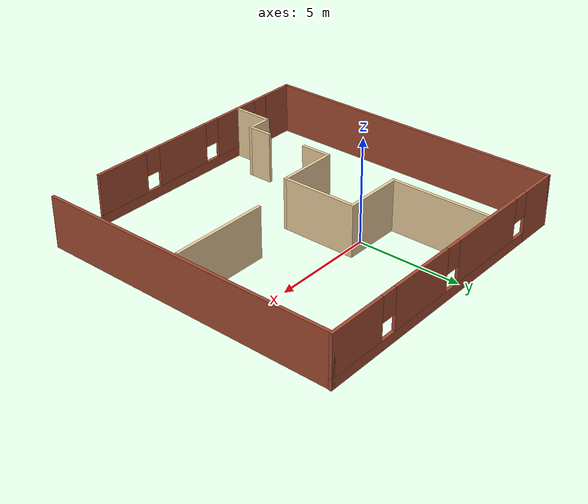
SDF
<?xml version='1.0'?>
<sdf version='1.7'>
  <model name='gMaze5'>
    <pose>1.11307 -2.1707 0 0 -0 0</pose>
    <link name='Wall_0'>
      <pose>0 7.425 0 0 -0 0</pose>
      <visual name='Wall_0_Visual_0'>
        <pose>-6.50945 0 1.25 0 -0 0</pose>
        <geometry>
          <box>
            <size>1.98109 0.15 2.5</size>
          </box>
        </geometry>
        <material>
          <script>
            <uri>file://media/materials/scripts/gazebo.material</uri>
            <name>Gazebo/Bricks</name>
          </script>
          <ambient>1 1 1 1</ambient>
        </material>
        <meta>
          <layer>0</layer>
        </meta>
      </visual>
      <collision name='Wall_0_Collision_0'>
        <geometry>
          <box>
            <size>1.98109 0.15 2.5</size>
          </box>
        </geometry>
        <pose>-6.50945 0 1.25 0 -0 0</pose>
      </collision>
      <visual name='Wall_0_Visual_1'>
        <pose>0.990545 0 0.25 0 -0 0</pose>
        <geometry>
          <box>
            <size>13.0189 0.15 0.5</size>
          </box>
        </geometry>
        <material>
          <script>
            <uri>file://media/materials/scripts/gazebo.material</uri>
            <name>Gazebo/Bricks</name>
          </script>
          <ambient>1 1 1 1</ambient>
        </material>
        <meta>
          <layer>0</layer>
        </meta>
      </visual>
      <collision name='Wall_0_Collision_1'>
        <geometry>
          <box>
            <size>13.0189 0.15 0.5</size>
          </box>
        </geometry>
        <pose>0.990545 0 0.25 0 -0 0</pose>
      </collision>
      <visual name='Wall_0_Visual_2'>
        <pose>-2.60363 0 1.5 0 -0 0</pose>
        <geometry>
          <box>
            <size>4.23056 0.15 2</size>
          </box>
        </geometry>
        <material>
          <script>
            <uri>file://media/materials/scripts/gazebo.material</uri>
            <name>Gazebo/Bricks</name>
          </script>
          <ambient>1 1 1 1</ambient>
        </material>
        <meta>
          <layer>0</layer>
        </meta>
      </visual>
      <collision name='Wall_0_Collision_2'>
        <geometry>
          <box>
            <size>4.23056 0.15 2</size>
          </box>
        </geometry>
        <pose>-2.60363 0 1.5 0 -0 0</pose>
      </collision>
      <visual name='Wall_0_Visual_3'>
        <pose>2.02238 0 1.5 0 -0 0</pose>
        <geometry>
          <box>
            <size>3.42145 0.15 2</size>
          </box>
        </geometry>
        <material>
          <script>
            <uri>file://media/materials/scripts/gazebo.material</uri>
            <name>Gazebo/Bricks</name>
          </script>
          <ambient>1 1 1 1</ambient>
        </material>
        <meta>
          <layer>0</layer>
        </meta>
      </visual>
      <collision name='Wall_0_Collision_3'>
        <geometry>
          <box>
            <size>3.42145 0.15 2</size>
          </box>
        </geometry>
        <pose>2.02238 0 1.5 0 -0 0</pose>
      </collision>
      <visual name='Wall_0_Visual_4'>
        <pose>6.01655 0 1.5 0 -0 0</pose>
        <geometry>
          <box>
            <size>2.9669 0.15 2</size>
          </box>
        </geometry>
        <material>
          <script>
            <uri>file://media/materials/scripts/gazebo.material</uri>
            <name>Gazebo/Bricks</name>
          </script>
          <ambient>1 1 1 1</ambient>
        </material>
        <meta>
          <layer>0</layer>
        </meta>
      </visual>
      <collision name='Wall_0_Collision_4'>
        <geometry>
          <box>
            <size>2.9669 0.15 2</size>
          </box>
        </geometry>
        <pose>6.01655 0 1.5 0 -0 0</pose>
      </collision>
      <visual name='Wall_0_Visual_5'>
        <pose>-5.11891 0 1.9 0 -0 0</pose>
        <geometry>
          <box>
            <size>0.8 0.15 1.2</size>
          </box>
        </geometry>
        <material>
          <script>
            <uri>file://media/materials/scripts/gazebo.material</uri>
            <name>Gazebo/Bricks</name>
          </script>
          <ambient>1 1 1 1</ambient>
        </material>
        <meta>
          <layer>0</layer>
        </meta>
      </visual>
      <collision name='Wall_0_Collision_5'>
        <geometry>
          <box>
            <size>0.8 0.15 1.2</size>
          </box>
        </geometry>
        <pose>-5.11891 0 1.9 0 -0 0</pose>
      </collision>
      <visual name='Wall_0_Visual_6'>
        <pose>-0.088347 0 1.9 0 -0 0</pose>
        <geometry>
          <box>
            <size>0.8 0.15 1.2</size>
          </box>
        </geometry>
        <material>
          <script>
            <uri>file://media/materials/scripts/gazebo.material</uri>
            <name>Gazebo/Bricks</name>
          </script>
          <ambient>1 1 1 1</ambient>
        </material>
        <meta>
          <layer>0</layer>
        </meta>
      </visual>
      <collision name='Wall_0_Collision_6'>
        <geometry>
          <box>
            <size>0.8 0.15 1.2</size>
          </box>
        </geometry>
        <pose>-0.088347 0 1.9 0 -0 0</pose>
      </collision>
      <visual name='Wall_0_Visual_7'>
        <pose>4.1331 0 1.9 0 -0 0</pose>
        <geometry>
          <box>
            <size>0.8 0.15 1.2</size>
          </box>
        </geometry>
        <material>
          <script>
            <uri>file://media/materials/scripts/gazebo.material</uri>
            <name>Gazebo/Bricks</name>
          </script>
          <ambient>1 1 1 1</ambient>
        </material>
        <meta>
          <layer>0</layer>
        </meta>
      </visual>
      <collision name='Wall_0_Collision_7'>
        <geometry>
          <box>
            <size>0.8 0.15 1.2</size>
          </box>
        </geometry>
        <pose>4.1331 0 1.9 0 -0 0</pose>
      </collision>
    </link>
    <link name='Wall_1'>
      <collision name='Wall_1_Collision'>
        <geometry>
          <box>
            <size>15 0.15 2.5</size>
          </box>
        </geometry>
        <pose>0 0 1.25 0 -0 0</pose>
      </collision>
      <visual name='Wall_1_Visual'>
        <pose>0 0 1.25 0 -0 0</pose>
        <geometry>
          <box>
            <size>15 0.15 2.5</size>
          </box>
        </geometry>
        <material>
          <script>
            <uri>file://media/materials/scripts/gazebo.material</uri>
            <name>Gazebo/Bricks</name>
          </script>
          <ambient>1 1 1 1</ambient>
        </material>
        <meta>
          <layer>0</layer>
        </meta>
      </visual>
      <pose>7.40489 -0 0 0 -0 -1.5708</pose>
    </link>
    <link name='Wall_3'>
      <collision name='Wall_3_Collision'>
        <geometry>
          <box>
            <size>15 0.15 2.5</size>
          </box>
        </geometry>
        <pose>0 0 1.25 0 -0 0</pose>
      </collision>
      <visual name='Wall_3_Visual'>
        <pose>0 0 1.25 0 -0 0</pose>
        <geometry>
          <box>
            <size>15 0.15 2.5</size>
          </box>
        </geometry>
        <material>
          <script>
            <uri>file://media/materials/scripts/gazebo.material</uri>
            <name>Gazebo/Bricks</name>
          </script>
          <ambient>1 1 1 1</ambient>
        </material>
        <meta>
          <layer>0</layer>
        </meta>
      </visual>
      <pose>-7.425 -0 0 0 -0 -1.5708</pose>
    </link>
    <link name='Wall_35'>
      <collision name='Wall_35_Collision'>
        <geometry>
          <box>
            <size>5 0.15 2.5</size>
          </box>
        </geometry>
        <pose>0 0 1.25 0 -0 0</pose>
      </collision>
      <visual name='Wall_35_Visual'>
        <pose>0 0 1.25 0 -0 0</pose>
        <geometry>
          <box>
            <size>5 0.15 2.5</size>
          </box>
        </geometry>
        <material>
          <script>
            <uri>file://media/materials/scripts/gazebo.material</uri>
            <name>Gazebo/Grey</name>
          </script>
          <ambient>0.921569 0.807843 0.615686 1</ambient>
        </material>
        <meta>
          <layer>0</layer>
        </meta>
      </visual>
      <pose>-2.83229 4.98706 0 0 -0 -1.5708</pose>
    </link>
    <link name='Wall_36'>
      <collision name='Wall_36_Collision'>
        <geometry>
          <box>
            <size>3 0.15 2.5</size>
          </box>
        </geometry>
        <pose>0 0 1.25 0 -0 0</pose>
      </collision>
      <visual name='Wall_36_Visual'>
        <pose>0 0 1.25 0 -0 0</pose>
        <geometry>
          <box>
            <size>3 0.15 2.5</size>
          </box>
        </geometry>
        <material>
          <script>
            <uri>file://media/materials/scripts/gazebo.material</uri>
            <name>Gazebo/Grey</name>
          </script>
          <ambient>0.921569 0.807843 0.615686 1</ambient>
        </material>
        <meta>
          <layer>0</layer>
        </meta>
      </visual>
      <pose>-1.40729 2.56206 0 0 -0 0</pose>
    </link>
    <link name='Wall_37'>
      <collision name='Wall_37_Collision'>
        <geometry>
          <box>
            <size>3.75 0.15 2.5</size>
          </box>
        </geometry>
        <pose>0 0 1.25 0 -0 0</pose>
      </collision>
      <visual name='Wall_37_Visual'>
        <pose>0 0 1.25 0 -0 0</pose>
        <geometry>
          <box>
            <size>3.75 0.15 2.5</size>
          </box>
        </geometry>
        <material>
          <script>
            <uri>file://media/materials/scripts/gazebo.material</uri>
            <name>Gazebo/Grey</name>
          </script>
          <ambient>0.921569 0.807843 0.615686 1</ambient>
        </material>
        <meta>
          <layer>0</layer>
        </meta>
      </visual>
      <pose>0.01771 0.762057 0 0 -0 -1.5708</pose>
    </link>
    <link name='Wall_38'>
      <collision name='Wall_38_Collision'>
        <geometry>
          <box>
            <size>3 0.15 2.5</size>
          </box>
        </geometry>
        <pose>0 0 1.25 0 -0 0</pose>
      </collision>
      <visual name='Wall_38_Visual'>
        <pose>0 0 1.25 0 -0 0</pose>
        <geometry>
          <box>
            <size>3 0.15 2.5</size>
          </box>
        </geometry>
        <material>
          <script>
            <uri>file://media/materials/scripts/gazebo.material</uri>
            <name>Gazebo/Grey</name>
          </script>
          <ambient>0.921569 0.807843 0.615686 1</ambient>
        </material>
        <meta>
          <layer>0</layer>
        </meta>
      </visual>
      <pose>-1.40729 -1.03794 0 0 -0 3.14159</pose>
    </link>
    <link name='Wall_39'>
      <collision name='Wall_39_Collision'>
        <geometry>
          <box>
            <size>1.5 0.15 2.5</size>
          </box>
        </geometry>
        <pose>0 0 1.25 0 -0 0</pose>
      </collision>
      <visual name='Wall_39_Visual'>
        <pose>0 0 1.25 0 -0 0</pose>
        <geometry>
          <box>
            <size>1.5 0.15 2.5</size>
          </box>
        </geometry>
        <material>
          <script>
            <uri>file://media/materials/scripts/gazebo.material</uri>
            <name>Gazebo/Grey</name>
          </script>
          <ambient>0.921569 0.807843 0.615686 1</ambient>
        </material>
        <meta>
          <layer>0</layer>
        </meta>
      </visual>
      <pose>-2.83229 -1.71294 0 0 -0 -1.5708</pose>
    </link>
    <link name='Wall_4'>
      <pose>-1.25 -7.425 0 0 -0 0</pose>
      <visual name='Wall_4_Visual_0'>
        <pose>-5.37558 0 1.25 0 -0 0</pose>
        <geometry>
          <box>
            <size>1.74884 0.15 2.5</size>
          </box>
        </geometry>
        <material>
          <script>
            <uri>file://media/materials/scripts/gazebo.material</uri>
            <name>Gazebo/Bricks</name>
          </script>
          <ambient>1 1 1 1</ambient>
        </material>
        <meta>
          <layer>0</layer>
        </meta>
      </visual>
      <collision name='Wall_4_Collision_0'>
        <geometry>
          <box>
            <size>1.74884 0.15 2.5</size>
          </box>
        </geometry>
        <pose>-5.37558 0 1.25 0 -0 0</pose>
      </collision>
      <visual name='Wall_4_Visual_1'>
        <pose>0.87442 0 0.25 0 -0 0</pose>
        <geometry>
          <box>
            <size>10.7512 0.15 0.5</size>
          </box>
        </geometry>
        <material>
          <script>
            <uri>file://media/materials/scripts/gazebo.material</uri>
            <name>Gazebo/Bricks</name>
          </script>
          <ambient>1 1 1 1</ambient>
        </material>
        <meta>
          <layer>0</layer>
        </meta>
      </visual>
      <collision name='Wall_4_Collision_1'>
        <geometry>
          <box>
            <size>10.7512 0.15 0.5</size>
          </box>
        </geometry>
        <pose>0.87442 0 0.25 0 -0 0</pose>
      </collision>
      <visual name='Wall_4_Visual_2'>
        <pose>-2.40199 0 1.5 0 -0 0</pose>
        <geometry>
          <box>
            <size>2.59834 0.15 2</size>
          </box>
        </geometry>
        <material>
          <script>
            <uri>file://media/materials/scripts/gazebo.material</uri>
            <name>Gazebo/Bricks</name>
          </script>
          <ambient>1 1 1 1</ambient>
        </material>
        <meta>
          <layer>0</layer>
        </meta>
      </visual>
      <collision name='Wall_4_Collision_2'>
        <geometry>
          <box>
            <size>2.59834 0.15 2</size>
          </box>
        </geometry>
        <pose>-2.40199 0 1.5 0 -0 0</pose>
      </collision>
      <visual name='Wall_4_Visual_3'>
        <pose>1.19683 0 1.5 0 -0 0</pose>
        <geometry>
          <box>
            <size>2.99931 0.15 2</size>
          </box>
        </geometry>
        <material>
          <script>
            <uri>file://media/materials/scripts/gazebo.material</uri>
            <name>Gazebo/Bricks</name>
          </script>
          <ambient>1 1 1 1</ambient>
        </material>
        <meta>
          <layer>0</layer>
        </meta>
      </visual>
      <collision name='Wall_4_Collision_3'>
        <geometry>
          <box>
            <size>2.99931 0.15 2</size>
          </box>
        </geometry>
        <pose>1.19683 0 1.5 0 -0 0</pose>
      </collision>
      <visual name='Wall_4_Visual_4'>
        <pose>4.87324 0 1.5 0 -0 0</pose>
        <geometry>
          <box>
            <size>2.75352 0.15 2</size>
          </box>
        </geometry>
        <material>
          <script>
            <uri>file://media/materials/scripts/gazebo.material</uri>
            <name>Gazebo/Bricks</name>
          </script>
          <ambient>1 1 1 1</ambient>
        </material>
        <meta>
          <layer>0</layer>
        </meta>
      </visual>
      <collision name='Wall_4_Collision_4'>
        <geometry>
          <box>
            <size>2.75352 0.15 2</size>
          </box>
        </geometry>
        <pose>4.87324 0 1.5 0 -0 0</pose>
      </collision>
      <visual name='Wall_4_Visual_5'>
        <pose>-4.10116 0 1.9 0 -0 0</pose>
        <geometry>
          <box>
            <size>0.8 0.15 1.2</size>
          </box>
        </geometry>
        <material>
          <script>
            <uri>file://media/materials/scripts/gazebo.material</uri>
            <name>Gazebo/Bricks</name>
          </script>
          <ambient>1 1 1 1</ambient>
        </material>
        <meta>
          <layer>0</layer>
        </meta>
      </visual>
      <collision name='Wall_4_Collision_5'>
        <geometry>
          <box>
            <size>0.8 0.15 1.2</size>
          </box>
        </geometry>
        <pose>-4.10116 0 1.9 0 -0 0</pose>
      </collision>
      <visual name='Wall_4_Visual_6'>
        <pose>-0.702821 0 1.9 0 -0 0</pose>
        <geometry>
          <box>
            <size>0.8 0.15 1.2</size>
          </box>
        </geometry>
        <material>
          <script>
            <uri>file://media/materials/scripts/gazebo.material</uri>
            <name>Gazebo/Bricks</name>
          </script>
          <ambient>1 1 1 1</ambient>
        </material>
        <meta>
          <layer>0</layer>
        </meta>
      </visual>
      <collision name='Wall_4_Collision_6'>
        <geometry>
          <box>
            <size>0.8 0.15 1.2</size>
          </box>
        </geometry>
        <pose>-0.702821 0 1.9 0 -0 0</pose>
      </collision>
      <visual name='Wall_4_Visual_7'>
        <pose>3.09648 0 1.9 0 -0 0</pose>
        <geometry>
          <box>
            <size>0.8 0.15 1.2</size>
          </box>
        </geometry>
        <material>
          <script>
            <uri>file://media/materials/scripts/gazebo.material</uri>
            <name>Gazebo/Bricks</name>
          </script>
          <ambient>1 1 1 1</ambient>
        </material>
        <meta>
          <layer>0</layer>
        </meta>
      </visual>
      <collision name='Wall_4_Collision_7'>
        <geometry>
          <box>
            <size>0.8 0.15 1.2</size>
          </box>
        </geometry>
        <pose>3.09648 0 1.9 0 -0 0</pose>
      </collision>
    </link>
    <link name='Wall_41'>
      <collision name='Wall_41_Collision'>
        <geometry>
          <box>
            <size>1.25 0.15 2.5</size>
          </box>
        </geometry>
        <pose>0 0 1.25 0 -0 0</pose>
      </collision>
      <visual name='Wall_41_Visual'>
        <pose>0 0 1.25 0 -0 0</pose>
        <geometry>
          <box>
            <size>1.25 0.15 2.5</size>
          </box>
        </geometry>
        <material>
          <script>
            <uri>file://media/materials/scripts/gazebo.material</uri>
            <name>Gazebo/Grey</name>
          </script>
          <ambient>0.921569 0.807843 0.615686 1</ambient>
        </material>
        <meta>
          <layer>0</layer>
        </meta>
      </visual>
      <pose>-2.72675 -4.99319 0 0 -0 -1.5708</pose>
    </link>
    <link name='Wall_42'>
      <collision name='Wall_42_Collision'>
        <geometry>
          <box>
            <size>1.25 0.15 2.5</size>
          </box>
        </geometry>
        <pose>0 0 1.25 0 -0 0</pose>
      </collision>
      <visual name='Wall_42_Visual'>
        <pose>0 0 1.25 0 -0 0</pose>
        <geometry>
          <box>
            <size>1.25 0.15 2.5</size>
          </box>
        </geometry>
        <material>
          <script>
            <uri>file://media/materials/scripts/gazebo.material</uri>
            <name>Gazebo/Grey</name>
          </script>
          <ambient>0.921569 0.807843 0.615686 1</ambient>
        </material>
        <meta>
          <layer>0</layer>
        </meta>
      </visual>
      <pose>-3.27675 -5.54319 0 0 -0 3.14159</pose>
    </link>
    <link name='Wall_43'>
      <collision name='Wall_43_Collision'>
        <geometry>
          <box>
            <size>2 0.15 2.5</size>
          </box>
        </geometry>
        <pose>0 0 1.25 0 -0 0</pose>
      </collision>
      <visual name='Wall_43_Visual'>
        <pose>0 0 1.25 0 -0 0</pose>
        <geometry>
          <box>
            <size>2 0.15 2.5</size>
          </box>
        </geometry>
        <material>
          <script>
            <uri>file://media/materials/scripts/gazebo.material</uri>
            <name>Gazebo/Grey</name>
          </script>
          <ambient>0.921569 0.807843 0.615686 1</ambient>
        </material>
        <meta>
          <layer>0</layer>
        </meta>
      </visual>
      <pose>-3.82675 -6.46819 0 0 -0 -1.5708</pose>
    </link>
    <link name='Wall_45'>
      <collision name='Wall_45_Collision'>
        <geometry>
          <box>
            <size>4.75 0.15 2.5</size>
          </box>
        </geometry>
        <pose>0 0 1.25 0 -0 0</pose>
      </collision>
      <visual name='Wall_45_Visual'>
        <pose>0 0 1.25 0 -0 0</pose>
        <geometry>
          <box>
            <size>4.75 0.15 2.5</size>
          </box>
        </geometry>
        <material>
          <script>
            <uri>file://media/materials/scripts/gazebo.material</uri>
            <name>Gazebo/Grey</name>
          </script>
          <ambient>0.921569 0.807843 0.615686 1</ambient>
        </material>
        <meta>
          <layer>0</layer>
        </meta>
      </visual>
      <pose>4.88524 -0.327271 0 0 -0 0</pose>
    </link>
    <static>1</static>
  </model>
</sdf>
